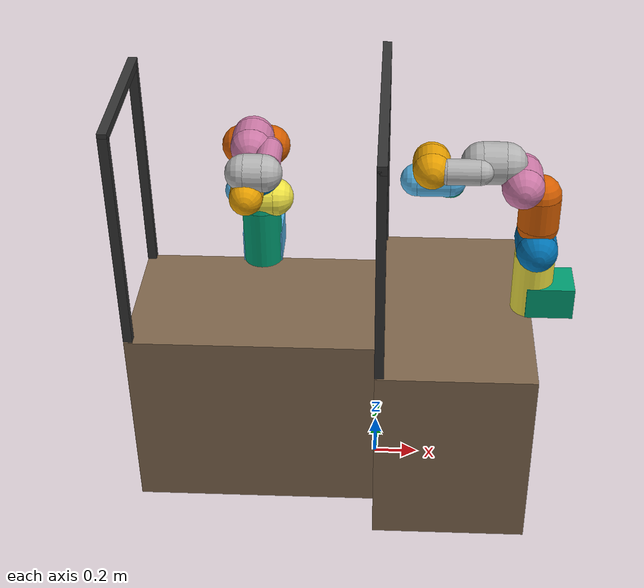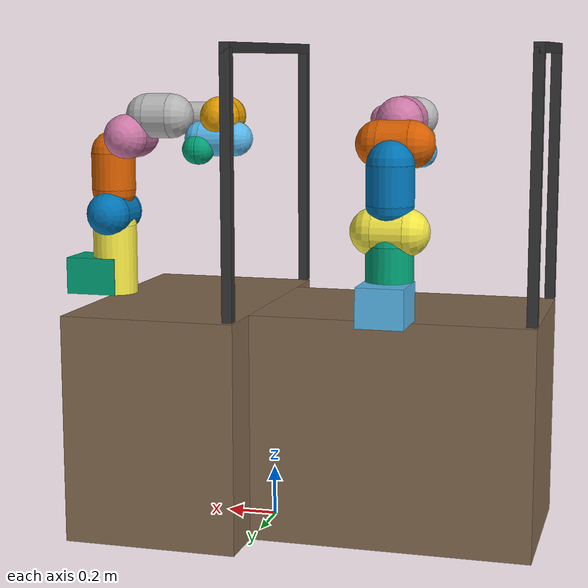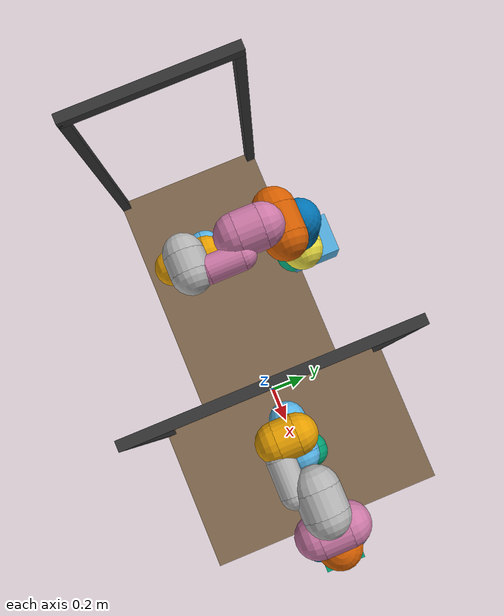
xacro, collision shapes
<?xml version='1.0' encoding='utf-8'?>
<robot xmlns:xacro="http://www.ros.org/wiki/xacro" name="dual_panda">
  <xacro:arg name="arm_id_1" default="mj_left"/> <!-- Name of this panda -->
  <xacro:arg name="arm_id_2" default="mj_right"/> <!-- Name of this panda -->
  <xacro:arg name="hand_1" default="false"/> <!-- Should a franka_gripper be mounted at the flange?" -->
  <xacro:arg name="hand_2" default="false"/> <!-- Should a franka_gripper be mounted at the flange?" -->
  <xacro:arg name="initial_positions_1" default="0.0 ${-pi/4} 0.0 ${-3*pi/4} 0.0 ${pi/2} ${pi/4}"/> <!-- initial joint positions of the robot-->
  <xacro:arg name="initial_positions_2" default="0.0 ${-pi/4} 0.0 ${-3*pi/4} 0.0 ${pi/2} ${pi/4}"/> <!-- initial joint positions of the robot-->

  <link name="base_link">
    <visual>
      <geometry>
         <box size="0.1 0.1 0.1"/>
      </geometry>
      <origin rpy="0 0 0" xyz="0 0 0"/>
    </visual>
    <collision>
      <geometry>
         <box size="0.1 0.1 0.1"/>
      </geometry>
      <origin rpy="0 0 0" xyz="0 0 0"/>
    </collision>
  </link>

  <xacro:include filename="$(find franka_description)/robots/common/panda_arm.xacro"/>
  <xacro:panda_arm arm_id="$(arg arm_id_1)" connected_to="base_link" rpy="0 0 ${-pi/2}"    xyz="-0.546 0.343 0.9"    safety_distance="0.03"/>
  <xacro:panda_arm arm_id="$(arg arm_id_2)" connected_to="base_link" rpy="0 0 ${pi}"       xyz="0.686 0 0.9" safety_distance="0.03"/>

  <xacro:if value="$(arg hand_1)">
    <xacro:include filename="$(find franka_description)/robots/common/hand.xacro"/>
    <xacro:hand ns="$(arg arm_id_1)" rpy="0 0 ${-pi/4}" connected_to="$(arg arm_id_1)_link8" safety_distance="0.03"/>
  </xacro:if>
  <xacro:if value="$(arg hand_2)">
    <xacro:include filename="$(find franka_description)/robots/common/hand.xacro"/>
    <xacro:hand ns="$(arg arm_id_2)" rpy="0 0 ${-pi/4}" connected_to="$(arg arm_id_2)_link8" safety_distance="0.03"/>
  </xacro:if>
  <xacro:include filename="$(find franka_description)/robots/sim/orio_environment.xacro"/>
  <xacro:orio_environment parent="base_link"/>

  <xacro:include filename="$(find franka_description)/robots/sim/dual_panda_arm_sim.ros2_control.xacro"/>
  <xacro:dual_panda_mjros_ros2_control
      ns_1="$(arg arm_id_1)"
      ns_2="$(arg arm_id_2)"
      hand_1="$(arg hand_1)"
      hand_2="$(arg hand_2)"
      initial_positions_1="$(arg initial_positions_1)"
      initial_positions_2="$(arg initial_positions_2)"/>
</robot>

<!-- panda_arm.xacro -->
<robot xmlns:xacro="http://www.ros.org/wiki/xacro" name="panda">
  <!-- safety_distance: Minimum safety distance in [m] by which the collision volumes are expanded and which is enforced during robot motions -->
  <!-- arm_id: Namespace of the panda arm. Serves to differentiate between arms in case of multiple instances. -->
  <xacro:macro name="panda_arm" params="arm_id:='panda' description_pkg:='franka_description' connected_to:='' xyz:='0 0 0' rpy:='0 0 0' safety_distance:=0">
    <xacro:unless value="${not connected_to}">
      <joint name="${arm_id}_joint_${connected_to}" type="fixed">
        <parent link="${connected_to}"/>
        <child link="${arm_id}_link0"/>
        <origin rpy="${rpy}" xyz="${xyz}"/>
      </joint>
    </xacro:unless>
    <link name="${arm_id}_link0">
      <visual>
        <geometry>
          <mesh filename="package://${description_pkg}/meshes/visual/link0.dae"/>
        </geometry>
      </visual>
      <collision>
        <origin xyz="-0.075 0 ${0.06 + safety_distance/2}" rpy="0 0 0"/>
        <geometry>
          <!-- height is base_height + safety_distance (top only, not bottom) -->
          <box size="${0.15 + 2*safety_distance} ${0.12 + 2*safety_distance} ${0.12 + safety_distance}" />
        </geometry>
      </collision>
    </link>
    <link name="${arm_id}_link1">
      <visual>
        <geometry>
          <mesh filename="package://${description_pkg}/meshes/visual/link1.dae"/>
        </geometry>
      </visual>
      <collision>
        <origin xyz="0 0 -0.1915" rpy="0 0 0"/>
        <geometry>
          <cylinder radius="${0.06+safety_distance}" length="0.2830" />
        </geometry>
      </collision>
      <collision>
        <origin xyz="0 0 -0.05" rpy="0 0 0"/>
        <geometry>
          <sphere radius="${0.06+safety_distance}" />
        </geometry>
      </collision>
    </link>
    <joint name="${arm_id}_joint1" type="revolute">
      <safety_controller k_position="100.0" k_velocity="40.0" soft_lower_limit="-2.8973" soft_upper_limit="2.8973"/>
      <origin rpy="0 0 0" xyz="0 0 0.333"/>
      <parent link="${arm_id}_link0"/>
      <child link="${arm_id}_link1"/>
      <axis xyz="0 0 1"/>
      <limit effort="87" lower="-2.8973" upper="2.8973" velocity="2.1750"/>
    </joint>
    <link name="${arm_id}_link2">
      <visual>
        <geometry>
          <mesh filename="package://${description_pkg}/meshes/visual/link2.dae"/>
        </geometry>
      </visual>
      <collision>
        <origin xyz="0 0 0" rpy="0 0 0"/>
        <geometry>
          <cylinder radius="${0.06+safety_distance}" length="0.12" />
        </geometry>
      </collision>
      <collision>
        <origin xyz="0 0 -0.06" rpy="0 0 0"/>
        <geometry>
          <sphere radius="${0.06+safety_distance}" />
        </geometry>
      </collision>
      <collision>
        <origin xyz="0 0 0.06" rpy="0 0 0"/>
        <geometry>
          <sphere radius="${0.06+safety_distance}" />
        </geometry>
      </collision>
    </link>
    <joint name="${arm_id}_joint2" type="revolute">
      <safety_controller k_position="100.0" k_velocity="40.0" soft_lower_limit="-1.7628" soft_upper_limit="1.7628"/>
      <origin rpy="${-pi/2} 0 0" xyz="0 0 0"/>
      <parent link="${arm_id}_link1"/>
      <child link="${arm_id}_link2"/>
      <axis xyz="0 0 1"/>
      <limit effort="87" lower="-1.7628" upper="1.7628" velocity="2.1750"/>
    </joint>
    <link name="${arm_id}_link3">
      <visual>
        <geometry>
          <mesh filename="package://${description_pkg}/meshes/visual/link3.dae"/>
        </geometry>
      </visual>
      <collision>
        <origin xyz="0 0 -0.145" rpy="0 0 0"/>
        <geometry>
          <cylinder radius="${0.06+safety_distance}" length="0.15" />
        </geometry>
      </collision>
      <collision>
        <origin xyz="0 0 -0.22" rpy="0 0 0"/>
        <geometry>
          <sphere radius="${0.06+safety_distance}" />
        </geometry>
      </collision>
      <collision>
        <origin xyz="0 0 -0.07" rpy="0 0 0"/>
        <geometry>
          <sphere radius="${0.06+safety_distance}" />
        </geometry>
      </collision>
    </link>
    <joint name="${arm_id}_joint3" type="revolute">
      <safety_controller k_position="100.0" k_velocity="40.0" soft_lower_limit="-2.8973" soft_upper_limit="2.8973"/>
      <origin rpy="${pi/2} 0 0" xyz="0 -0.316 0"/>
      <parent link="${arm_id}_link2"/>
      <child link="${arm_id}_link3"/>
      <axis xyz="0 0 1"/>
      <limit effort="87" lower="-2.8973" upper="2.8973" velocity="2.1750"/>
    </joint>
    <link name="${arm_id}_link4">
      <visual>
        <geometry>
          <mesh filename="package://${description_pkg}/meshes/visual/link4.dae"/>
        </geometry>
      </visual>
      <collision>
        <origin xyz="0 0 0" rpy="0 0 0"/>
        <geometry>
          <cylinder radius="${0.06+safety_distance}" length="0.12" />
        </geometry>
      </collision>
      <collision>
        <origin xyz="0 0 0.06" rpy="0 0 0"/>
        <geometry>
          <sphere radius="${0.06+safety_distance}" />
        </geometry>
      </collision>
      <collision>
        <origin xyz="0 0 -0.06" rpy="0 0 0"/>
        <geometry>
          <sphere radius="${0.06+safety_distance}" />
        </geometry>
      </collision>
    </link>
    <joint name="${arm_id}_joint4" type="revolute">
      <safety_controller k_position="100.0" k_velocity="40.0" soft_lower_limit="-3.0718" soft_upper_limit="-0.0698"/>
      <origin rpy="${pi/2} 0 0" xyz="0.0825 0 0"/>
      <parent link="${arm_id}_link3"/>
      <child link="${arm_id}_link4"/>
      <axis xyz="0 0 1"/>
      <limit effort="87" lower="-3.0718" upper="-0.0698" velocity="2.1750"/>
    </joint>
    <link name="${arm_id}_link5">
      <visual>
        <geometry>
          <mesh filename="package://${description_pkg}/meshes/visual/link5.dae"/>
        </geometry>
      </visual>
      <collision>
        <origin xyz="0 0 -0.26" rpy="0 0 0"/>
        <geometry>
          <cylinder radius="${0.06+safety_distance}" length="0.1" />
        </geometry>
      </collision>
      <collision>
        <origin xyz="0 0 -0.31" rpy="0 0 0"/>
        <geometry>
          <sphere radius="${0.06+safety_distance}" />
        </geometry>
      </collision>
      <collision>
        <origin xyz="0 0 -0.21" rpy="0 0 0"/>
        <geometry>
          <sphere radius="${0.06+safety_distance}" />
        </geometry>
      </collision>
      <collision>
        <origin xyz="0 0.08 -0.13" rpy="0 0 0"/>
        <geometry>
          <cylinder radius="${0.025+safety_distance}" length="0.14" />
        </geometry>
      </collision>
      <collision>
        <origin xyz="0 0.08 -0.06" rpy="0 0 0"/>
        <geometry>
          <sphere radius="${0.025+safety_distance}" />
        </geometry>
      </collision>
      <collision>
        <origin xyz="0 0.08 -0.20" rpy="0 0 0"/>
        <geometry>
          <sphere radius="${0.025+safety_distance}" />
        </geometry>
      </collision>

    </link>
    <joint name="${arm_id}_joint5" type="revolute">
      <safety_controller k_position="100.0" k_velocity="40.0" soft_lower_limit="-2.8973" soft_upper_limit="2.8973"/>
      <origin rpy="${-pi/2} 0 0" xyz="-0.0825 0.384 0"/>
      <parent link="${arm_id}_link4"/>
      <child link="${arm_id}_link5"/>
      <axis xyz="0 0 1"/>
      <limit effort="12" lower="-2.8973" upper="2.8973" velocity="2.6100"/>
    </joint>
    <link name="${arm_id}_link6">
      <visual>
        <geometry>
          <mesh filename="package://${description_pkg}/meshes/visual/link6.dae"/>
        </geometry>
      </visual>
      <collision>
        <origin xyz="0 0 -0.03" rpy="0 0 0"/>
        <geometry>
          <cylinder radius="${0.05+safety_distance}" length="0.08" />
        </geometry>
      </collision>
      <collision>
        <origin xyz="0 0 0.01" rpy="0 0 0"/>
        <geometry>
          <sphere radius="${0.05+safety_distance}" />
        </geometry>
      </collision>
      <collision>
        <origin xyz="0 0 -0.07" rpy="0 0 0"/>
        <geometry>
          <sphere radius="${0.05+safety_distance}" />
        </geometry>
      </collision>
    </link>
    <joint name="${arm_id}_joint6" type="revolute">
      <safety_controller k_position="100.0" k_velocity="40.0" soft_lower_limit="-0.0175" soft_upper_limit="3.7525"/>
      <origin rpy="${pi/2} 0 0" xyz="0 0 0"/>
      <parent link="${arm_id}_link5"/>
      <child link="${arm_id}_link6"/>
      <axis xyz="0 0 1"/>
      <limit effort="12" lower="-0.0175" upper="3.7525" velocity="2.6100"/>
    </joint>
    <link name="${arm_id}_link7">
      <visual>
        <geometry>
          <mesh filename="package://${description_pkg}/meshes/visual/link7.dae"/>
        </geometry>
      </visual>
      <collision>
        <origin xyz="0 0 0.01" rpy="0 0 0"/>
        <geometry>
          <cylinder radius="${0.04+safety_distance}" length="0.14" />
        </geometry>
      </collision>
      <collision>
        <origin xyz="0 0 0.08" rpy="0 0 0"/>
        <geometry>
          <sphere radius="${0.04+safety_distance}"  />
        </geometry>
      </collision>
      <collision>
        <origin xyz="0 0 -0.06" rpy="0 0 0"/>
        <geometry>
          <sphere radius="${0.04+safety_distance}"  />
        </geometry>
      </collision>
    </link>
    <joint name="${arm_id}_joint7" type="revolute">
      <safety_controller k_position="100.0" k_velocity="40.0" soft_lower_limit="-2.8973" soft_upper_limit="2.8973"/>
      <origin rpy="${pi/2} 0 0" xyz="0.088 0 0"/>
      <parent link="${arm_id}_link6"/>
      <child link="${arm_id}_link7"/>
      <axis xyz="0 0 1"/>
      <limit effort="12" lower="-2.8973" upper="2.8973" velocity="2.6100"/>
    </joint>
    <link name="${arm_id}_link8">
      <collision>
        <origin xyz="0.0424 0.0424 -0.0250" rpy="${pi} ${pi/2} ${pi/2}"/>
        <geometry>
          <cylinder radius="${0.03+safety_distance}"  length="0.01" />
        </geometry>
      </collision>
      <collision>
        <origin xyz="0.0424 0.0424 -0.02" rpy="0 0 0"/>
        <geometry>
          <sphere radius="${0.03+safety_distance}"  />
        </geometry>
      </collision>
      <collision>
        <origin xyz="0.0424 0.0424 -0.03" rpy="0 0 0"/>
        <geometry>
          <sphere radius="${0.03+safety_distance}"  />
        </geometry>
      </collision>
    </link>
    <joint name="${arm_id}_joint8" type="fixed">
      <origin rpy="0 0 0" xyz="0 0 0.107"/>
      <parent link="${arm_id}_link7"/>
      <child link="${arm_id}_link8"/>
    </joint>
  </xacro:macro>
</robot>

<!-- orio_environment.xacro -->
<robot xmlns:xacro="http://www.ros.org/wiki/xacro" name="orio_environment">

  <xacro:macro name="orio_environment" params="parent">

    <!-- TABLE 1 (right-hand side, in front of left arm)              -->
    <!-- mujoco body pos=0.343_0_0.45 size=0.343_0.546_0.45          -->
    <link name="table_top_1">
      <visual>
        <geometry>
          <box size="0.686 1.092 0.89"/>
        </geometry>
        <origin xyz="0 0 0" rpy="0 0 0"/>
        <material name="table_wood">
          <color rgba="0.5 0.4 0.3 1"/>
        </material>
      </visual>
      <collision>
        <geometry>
          <box size="0.686 1.092 0.89"/>
        </geometry>
        <origin xyz="0 0 0" rpy="0 0 0"/>
      </collision>
    </link>
    <joint name="table_top_1_joint" type="fixed">
      <parent link="${parent}"/>
      <child link="table_top_1"/>
      <origin xyz="0.343 0 0.45" rpy="0 0 0"/>
    </joint>

    <!-- Frame 1 world origin = table_1.pos + frame_1.pos = (0.020, 0, 0.90) -->

    <link name="post_1_l">
      <visual>
        <geometry>
          <box size="0.04 0.04 1.00"/>
        </geometry>
        <origin xyz="0 0 0" rpy="0 0 0"/>
        <material name="frame_metal">
          <color rgba="0.2 0.2 0.2 1"/>
        </material>
      </visual>
      <collision>
        <geometry>
          <box size="0.04 0.04 1.00"/>
        </geometry>
        <origin xyz="0 0 0" rpy="0 0 0"/>
      </collision>
    </link>
    <joint name="post_1_l_joint" type="fixed">
      <parent link="${parent}"/>
      <child link="post_1_l"/>
      <!-- frame origin + geom pos (0, -0.526, 0.50) -->
      <origin xyz="0.020 -0.526 1.40" rpy="0 0 0"/>
    </joint>

    <link name="post_1_r">
      <visual>
        <geometry>
          <box size="0.04 0.04 1.00"/>
        </geometry>
        <origin xyz="0 0 0" rpy="0 0 0"/>
        <material name="frame_metal">
          <color rgba="0.2 0.2 0.2 1"/>
        </material>
      </visual>
      <collision>
        <geometry>
          <box size="0.04 0.04 1.00"/>
        </geometry>
        <origin xyz="0 0 0" rpy="0 0 0"/>
      </collision>
    </link>
    <joint name="post_1_r_joint" type="fixed">
      <parent link="${parent}"/>
      <child link="post_1_r"/>
      <!-- frame origin + geom pos (0, 0.526, 0.50) -->
      <origin xyz="0.020 0.526 1.40" rpy="0 0 0"/>
    </joint>

    <link name="crossbar_1">
      <visual>
        <geometry>
          <box size="0.04 1.092 0.04"/>
        </geometry>
        <origin xyz="0 0 0" rpy="0 0 0"/>
        <material name="frame_metal">
          <color rgba="0.2 0.2 0.2 1"/>
        </material>
      </visual>
      <collision>
        <geometry>
          <box size="0.04 1.092 0.04"/>
        </geometry>
        <origin xyz="0 0 0" rpy="0 0 0"/>
      </collision>
    </link>
    <joint name="crossbar_1_joint" type="fixed">
      <parent link="${parent}"/>
      <child link="crossbar_1"/>
      <!-- frame origin + geom pos (0, 0, 1.00) -->
      <origin xyz="0.020 0 1.90" rpy="0 0 0"/>
    </joint>

    <!-- TABLE 2 (left-hand side, in front of right arm)              -->
    <!-- mujoco body pos=-0.546_0_0.45 size=0.546_0.343_0.45         -->
    <link name="table_top_2">
      <visual>
        <geometry>
          <box size="1.092 0.686 0.89"/>
        </geometry>
        <origin xyz="0 0 0" rpy="0 0 0"/>
        <material name="table_wood">
          <color rgba="0.5 0.4 0.3 1"/>
        </material>
      </visual>
      <collision>
        <geometry>
          <box size="1.092 0.686 0.89"/>
        </geometry>
        <origin xyz="0 0 0" rpy="0 0 0"/>
      </collision>
    </link>
    <joint name="table_top_2_joint" type="fixed">
      <parent link="${parent}"/>
      <child link="table_top_2"/>
      <origin xyz="-0.546 0 0.45" rpy="0 0 0"/>
    </joint>

    <!-- Frame 2 world origin = table_2.pos + frame_2.pos = (-1.072, 0, 0.90) -->

    <link name="post_2_l">
      <visual>
        <geometry>
          <box size="0.04 0.04 1.00"/>
        </geometry>
        <origin xyz="0 0 0" rpy="0 0 0"/>
        <material name="frame_metal">
          <color rgba="0.2 0.2 0.2 1"/>
        </material>
      </visual>
      <collision>
        <geometry>
          <box size="0.04 0.04 1.00"/>
        </geometry>
        <origin xyz="0 0 0" rpy="0 0 0"/>
      </collision>
    </link>
    <joint name="post_2_l_joint" type="fixed">
      <parent link="${parent}"/>
      <child link="post_2_l"/>
      <!-- frame origin + geom pos (0, -0.323, 0.50) -->
      <origin xyz="-1.072 -0.323 1.40" rpy="0 0 0"/>
    </joint>

    <link name="post_2_r">
      <visual>
        <geometry>
          <box size="0.04 0.04 1.00"/>
        </geometry>
        <origin xyz="0 0 0" rpy="0 0 0"/>
        <material name="frame_metal">
          <color rgba="0.2 0.2 0.2 1"/>
        </material>
      </visual>
      <collision>
        <geometry>
          <box size="0.04 0.04 1.00"/>
        </geometry>
        <origin xyz="0 0 0" rpy="0 0 0"/>
      </collision>
    </link>
    <joint name="post_2_r_joint" type="fixed">
      <parent link="${parent}"/>
      <child link="post_2_r"/>
      <!-- frame origin + geom pos (0, 0.323, 0.50) -->
      <origin xyz="-1.072 0.323 1.40" rpy="0 0 0"/>
    </joint>

    <link name="crossbar_2">
      <visual>
        <geometry>
          <box size="0.04 0.686 0.04"/>
        </geometry>
        <origin xyz="0 0 0" rpy="0 0 0"/>
        <material name="frame_metal">
          <color rgba="0.2 0.2 0.2 1"/>
        </material>
      </visual>
      <collision>
        <geometry>
          <box size="0.04 0.686 0.04"/>
        </geometry>
        <origin xyz="0 0 0" rpy="0 0 0"/>
      </collision>
    </link>
    <joint name="crossbar_2_joint" type="fixed">
      <parent link="${parent}"/>
      <child link="crossbar_2"/>
      <!-- frame origin + geom pos (0, 0, 1.00) -->
      <origin xyz="-1.072 0 1.90" rpy="0 0 0"/>
    </joint>

  </xacro:macro>

</robot>
